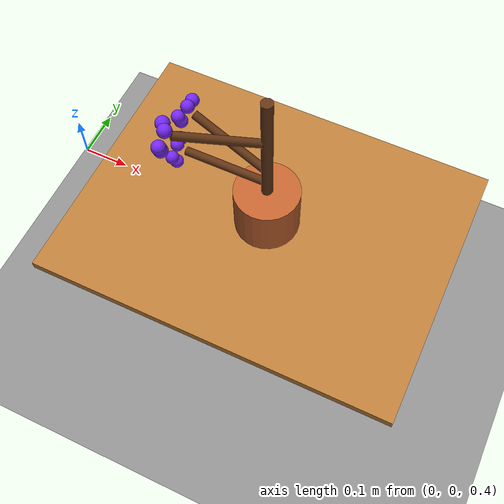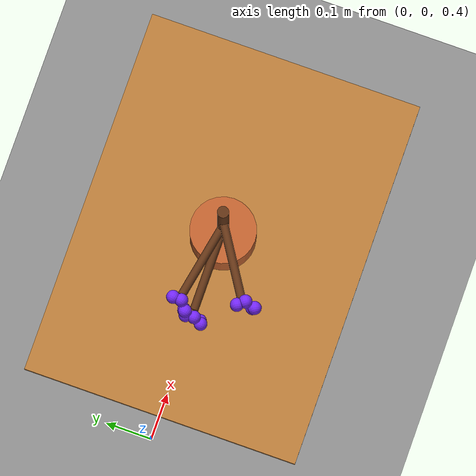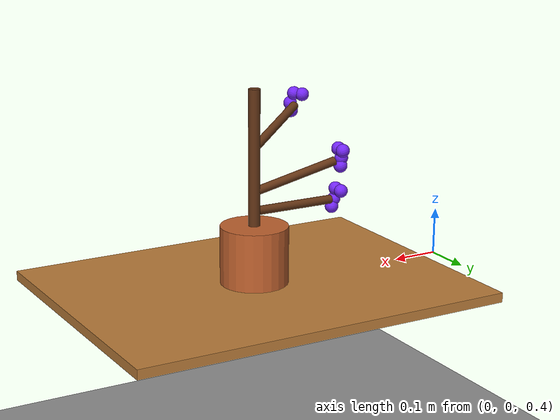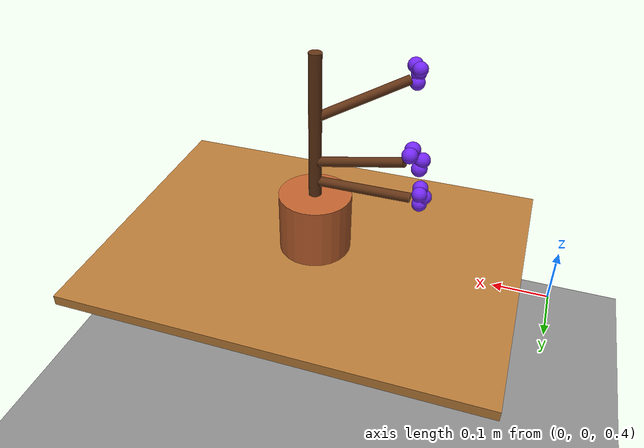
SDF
<?xml version="1.0" ?>
<sdf version="1.9">
  <world name="blueberry_picking">
    <physics name="default" type="ode">
      <max_step_size>0.001</max_step_size>
      <real_time_factor>1.0</real_time_factor>
    </physics>
    <plugin filename="gz-sim-physics-system" name="gz::sim::systems::Physics"/>
    <plugin filename="gz-sim-user-commands-system" name="gz::sim::systems::UserCommands"/>
    <plugin filename="gz-sim-scene-broadcaster-system" name="gz::sim::systems::SceneBroadcaster"/>
    <plugin filename="gz-sim-sensors-system" name="gz::sim::systems::Sensors">
      <render_engine>ogre2</render_engine>
    </plugin>

    <light type="directional" name="sun">
      <cast_shadows>true</cast_shadows>
      <pose>0 0 10 0 0 0</pose>
      <diffuse>0.9 0.9 0.85 1</diffuse>
      <specular>0.3 0.3 0.3 1</specular>
    </light>

    <light type="point" name="table_light">
      <pose>0.45 0 1.1 0 0 0</pose>
      <diffuse>0.95 0.9 0.8 1</diffuse>
      <specular>0.2 0.2 0.2 1</specular>
      <attenuation>
        <range>4</range>
        <constant>0.3</constant>
        <linear>0.1</linear>
      </attenuation>
    </light>

    <gui fullscreen="0">
      <camera name="user_camera">
        <pose>0.2 -1.0 0.75 0 0.35 1.57</pose>
      </camera>
    </gui>

    <model name="ground_plane">
      <static>true</static>
      <link name="link">
        <collision name="collision">
          <geometry><plane><normal>0 0 1</normal><size>10 10</size></plane></geometry>
        </collision>
        <visual name="visual">
          <geometry><plane><normal>0 0 1</normal><size>10 10</size></plane></geometry>
          <material>
            <ambient>0.5 0.5 0.5 1</ambient>
            <diffuse>0.55 0.55 0.55 1</diffuse>
            <specular>0.05 0.05 0.05 1</specular>
          </material>
        </visual>
      </link>
    </model>

    <model name="work_table">
      <static>true</static>
      <pose>0.45 0 0.4 0 0 0</pose>
      <link name="link">
        <collision name="collision">
          <geometry><box><size>0.8 0.6 0.02</size></box></geometry>
        </collision>
        <visual name="visual">
          <geometry><box><size>0.8 0.6 0.02</size></box></geometry>
          <material>
            <ambient>0.55 0.35 0.18 1</ambient>
            <diffuse>0.72 0.48 0.22 1</diffuse>
            <specular>0.15 0.1 0.05 1</specular>
          </material>
        </visual>
      </link>
    </model>

    <model name="blueberry_plant">
      <static>true</static>
      <pose>0.45 0 0.41 0 0 0</pose>

      <!-- Terracotta pot: r=0.07m, h=0.12m, center 6cm above model origin -->
      <link name="pot">
        <pose>0 0 0.060 0 0 0</pose>
        <visual name="visual">
          <geometry><cylinder><radius>0.070</radius><length>0.120</length></cylinder></geometry>
          <material>
            <ambient>0.65 0.30 0.15 1</ambient>
            <diffuse>0.75 0.38 0.18 1</diffuse>
            <specular>0.10 0.06 0.04 1</specular>
          </material>
        </visual>
      </link>

      <!-- Vertical trunk: r=0.012m, h=0.28m, from pot top (z=0.12) to z=0.40 -->
      <link name="trunk">
        <pose>0 0 0.260 0 0 0</pose>
        <visual name="visual">
          <geometry><cylinder><radius>0.012</radius><length>0.280</length></cylinder></geometry>
          <material>
            <ambient>0.30 0.16 0.06 1</ambient>
            <diffuse>0.38 0.20 0.08 1</diffuse>
            <specular>0.05 0.03 0.01 1</specular>
          </material>
        </visual>
        <collision name="collision">
          <geometry><cylinder><radius>0.012</radius><length>0.280</length></cylinder></geometry>
        </collision>
      </link>
      <joint name="trunk_joint" type="fixed">
        <parent>pot</parent><child>trunk</child>
      </joint>

      <link name="branch_1">
        <pose>-0.085 0.015 0.215 0 1.289 2.966</pose>
        <visual name="visual">
          <geometry><cylinder><radius>0.009</radius><length>0.180</length></cylinder></geometry>
          <material>
            <ambient>0.30 0.16 0.06 1</ambient>
            <diffuse>0.38 0.20 0.08 1</diffuse>
            <specular>0.05 0.03 0.01 1</specular>
          </material>
        </visual>
        <collision name="collision">
          <geometry><cylinder><radius>0.009</radius><length>0.180</length></cylinder></geometry>
        </collision>
      </link>
      <joint name="branch_1_joint" type="fixed">
        <parent>trunk</parent><child>branch_1</child>
      </joint>

      <!-- Branch 1 berries: tip cluster outside branch +Z end (half_len=0.09, r=0.012 → z>=0.102) -->
      <link name="berry_1_1">
        <pose relative_to="branch_1">0.022 0.018 0.105 0 0 0</pose>
        <visual name="visual">
          <geometry><sphere><radius>0.014</radius></sphere></geometry>
          <material>
            <ambient>0.35 0.10 0.85 1</ambient><diffuse>0.45 0.15 0.95 1</diffuse>
            <specular>0.20 0.20 0.30 1</specular><emissive>0.12 0.04 0.28 1</emissive>
          </material>
        </visual>
      </link>
      <joint name="b1_1" type="fixed"><parent>branch_1</parent><child>berry_1_1</child>
      </joint>

      <link name="berry_1_2">
        <pose relative_to="branch_1">-0.018 -0.012 0.108 0 0 0</pose>
        <visual name="visual">
          <geometry><sphere><radius>0.014</radius></sphere></geometry>
          <material>
            <ambient>0.35 0.10 0.85 1</ambient><diffuse>0.45 0.15 0.95 1</diffuse>
            <specular>0.20 0.20 0.30 1</specular><emissive>0.12 0.04 0.28 1</emissive>
          </material>
        </visual>
      </link>
      <joint name="b1_2" type="fixed"><parent>branch_1</parent><child>berry_1_2</child>
      </joint>

      <link name="berry_1_3">
        <pose relative_to="branch_1">0.008 0.022 0.112 0 0 0</pose>
        <visual name="visual">
          <geometry><sphere><radius>0.014</radius></sphere></geometry>
          <material>
            <ambient>0.35 0.10 0.85 1</ambient><diffuse>0.45 0.15 0.95 1</diffuse>
            <specular>0.20 0.20 0.30 1</specular><emissive>0.12 0.04 0.28 1</emissive>
          </material>
        </visual>
      </link>
      <joint name="b1_3" type="fixed"><parent>branch_1</parent><child>berry_1_3</child>
      </joint>

      <link name="berry_1_4">
        <pose relative_to="branch_1">-0.020 0.006 0.106 0 0 0</pose>
        <visual name="visual">
          <geometry><sphere><radius>0.014</radius></sphere></geometry>
          <material>
            <ambient>0.35 0.10 0.85 1</ambient><diffuse>0.45 0.15 0.95 1</diffuse>
            <specular>0.20 0.20 0.30 1</specular><emissive>0.12 0.04 0.28 1</emissive>
          </material>
        </visual>
      </link>
      <joint name="b1_4" type="fixed"><parent>branch_1</parent><child>berry_1_4</child>
      </joint>

      <link name="branch_2">
        <pose>-0.073 -0.045 0.307 0 1.264 -2.583</pose>
        <visual name="visual">
          <geometry><cylinder><radius>0.009</radius><length>0.180</length></cylinder></geometry>
          <material>
            <ambient>0.30 0.16 0.06 1</ambient>
            <diffuse>0.38 0.20 0.08 1</diffuse>
            <specular>0.05 0.03 0.01 1</specular>
          </material>
        </visual>
        <collision name="collision">
          <geometry><cylinder><radius>0.009</radius><length>0.180</length></cylinder></geometry>
        </collision>
      </link>
      <joint name="branch_2_joint" type="fixed">
        <parent>trunk</parent><child>branch_2</child>
      </joint>

      <!-- Branch 2 berries: tip cluster outside branch +Z end -->
      <link name="berry_2_1">
        <pose relative_to="branch_2">0.022 0.018 0.105 0 0 0</pose>
        <visual name="visual">
          <geometry><sphere><radius>0.014</radius></sphere></geometry>
          <material>
            <ambient>0.35 0.10 0.85 1</ambient><diffuse>0.45 0.15 0.95 1</diffuse>
            <specular>0.20 0.20 0.30 1</specular><emissive>0.12 0.04 0.28 1</emissive>
          </material>
        </visual>
      </link>
      <joint name="b2_1" type="fixed"><parent>branch_2</parent><child>berry_2_1</child>
      </joint>

      <link name="berry_2_2">
        <pose relative_to="branch_2">-0.018 -0.012 0.108 0 0 0</pose>
        <visual name="visual">
          <geometry><sphere><radius>0.014</radius></sphere></geometry>
          <material>
            <ambient>0.35 0.10 0.85 1</ambient><diffuse>0.45 0.15 0.95 1</diffuse>
            <specular>0.20 0.20 0.30 1</specular><emissive>0.12 0.04 0.28 1</emissive>
          </material>
        </visual>
      </link>
      <joint name="b2_2" type="fixed"><parent>branch_2</parent><child>berry_2_2</child>
      </joint>

      <link name="berry_2_3">
        <pose relative_to="branch_2">0.008 0.022 0.112 0 0 0</pose>
        <visual name="visual">
          <geometry><sphere><radius>0.014</radius></sphere></geometry>
          <material>
            <ambient>0.35 0.10 0.85 1</ambient><diffuse>0.45 0.15 0.95 1</diffuse>
            <specular>0.20 0.20 0.30 1</specular><emissive>0.12 0.04 0.28 1</emissive>
          </material>
        </visual>
      </link>
      <joint name="b2_3" type="fixed"><parent>branch_2</parent><child>berry_2_3</child>
      </joint>

      <link name="berry_2_4">
        <pose relative_to="branch_2">-0.020 0.006 0.106 0 0 0</pose>
        <visual name="visual">
          <geometry><sphere><radius>0.014</radius></sphere></geometry>
          <material>
            <ambient>0.35 0.10 0.85 1</ambient><diffuse>0.45 0.15 0.95 1</diffuse>
            <specular>0.20 0.20 0.30 1</specular><emissive>0.12 0.04 0.28 1</emissive>
          </material>
        </visual>
      </link>
      <joint name="b2_4" type="fixed"><parent>branch_2</parent><child>berry_2_4</child>
      </joint>

      <!--
        Branch 3: near-horizontal toward arm.
        dir=(-1, 0, 0), origin z_local=0.15 on trunk
        link center at (-0.090, 0, 0.150), pitch=pi/2=1.5708, yaw=pi=3.1416
      -->
      <link name="branch_3">
        <pose>-0.090 0.000 0.150 0 1.5708 3.1416</pose>
        <visual name="visual">
          <geometry><cylinder><radius>0.009</radius><length>0.180</length></cylinder></geometry>
          <material>
            <ambient>0.30 0.16 0.06 1</ambient>
            <diffuse>0.38 0.20 0.08 1</diffuse>
            <specular>0.05 0.03 0.01 1</specular>
          </material>
        </visual>
        <collision name="collision">
          <geometry><cylinder><radius>0.009</radius><length>0.180</length></cylinder></geometry>
        </collision>
      </link>
      <joint name="branch_3_joint" type="fixed">
        <parent>trunk</parent><child>branch_3</child>
      </joint>

      <!-- Branch 3 berries: tip cluster outside branch +Z end -->
      <link name="berry_3_1">
        <pose relative_to="branch_3">0.022 0.018 0.105 0 0 0</pose>
        <visual name="visual">
          <geometry><sphere><radius>0.014</radius></sphere></geometry>
          <material>
            <ambient>0.35 0.10 0.85 1</ambient><diffuse>0.45 0.15 0.95 1</diffuse>
            <specular>0.20 0.20 0.30 1</specular><emissive>0.12 0.04 0.28 1</emissive>
          </material>
        </visual>
      </link>
      <joint name="b3_1" type="fixed"><parent>branch_3</parent><child>berry_3_1</child>
      </joint>

      <link name="berry_3_2">
        <pose relative_to="branch_3">-0.018 -0.012 0.108 0 0 0</pose>
        <visual name="visual">
          <geometry><sphere><radius>0.014</radius></sphere></geometry>
          <material>
            <ambient>0.35 0.10 0.85 1</ambient><diffuse>0.45 0.15 0.95 1</diffuse>
            <specular>0.20 0.20 0.30 1</specular><emissive>0.12 0.04 0.28 1</emissive>
          </material>
        </visual>
      </link>
      <joint name="b3_2" type="fixed"><parent>branch_3</parent><child>berry_3_2</child>
      </joint>

      <link name="berry_3_3">
        <pose relative_to="branch_3">0.008 0.022 0.112 0 0 0</pose>
        <visual name="visual">
          <geometry><sphere><radius>0.014</radius></sphere></geometry>
          <material>
            <ambient>0.35 0.10 0.85 1</ambient><diffuse>0.45 0.15 0.95 1</diffuse>
            <specular>0.20 0.20 0.30 1</specular><emissive>0.12 0.04 0.28 1</emissive>
          </material>
        </visual>
      </link>
      <joint name="b3_3" type="fixed"><parent>branch_3</parent><child>berry_3_3</child>
      </joint>

      <link name="berry_3_4">
        <pose relative_to="branch_3">-0.020 0.006 0.106 0 0 0</pose>
        <visual name="visual">
          <geometry><sphere><radius>0.014</radius></sphere></geometry>
          <material>
            <ambient>0.35 0.10 0.85 1</ambient><diffuse>0.45 0.15 0.95 1</diffuse>
            <specular>0.20 0.20 0.30 1</specular><emissive>0.12 0.04 0.28 1</emissive>
          </material>
        </visual>
      </link>
      <joint name="b3_4" type="fixed"><parent>branch_3</parent><child>berry_3_4</child>
      </joint>

      <!-- PosePublisher: per-link poses with names for ros_gz_bridge (not pose/info). -->
      <plugin
        filename="gz-sim-pose-publisher-system"
        name="gz::sim::systems::PosePublisher">
        <publish_link_pose>true</publish_link_pose>
        <publish_collision_pose>false</publish_collision_pose>
        <publish_visual_pose>false</publish_visual_pose>
        <publish_nested_model_pose>true</publish_nested_model_pose>
        <use_pose_vector_msg>true</use_pose_vector_msg>
        <static_publisher>true</static_publisher>
        <static_update_frequency>1</static_update_frequency>
      </plugin>
    </model>
  </world>
</sdf>
